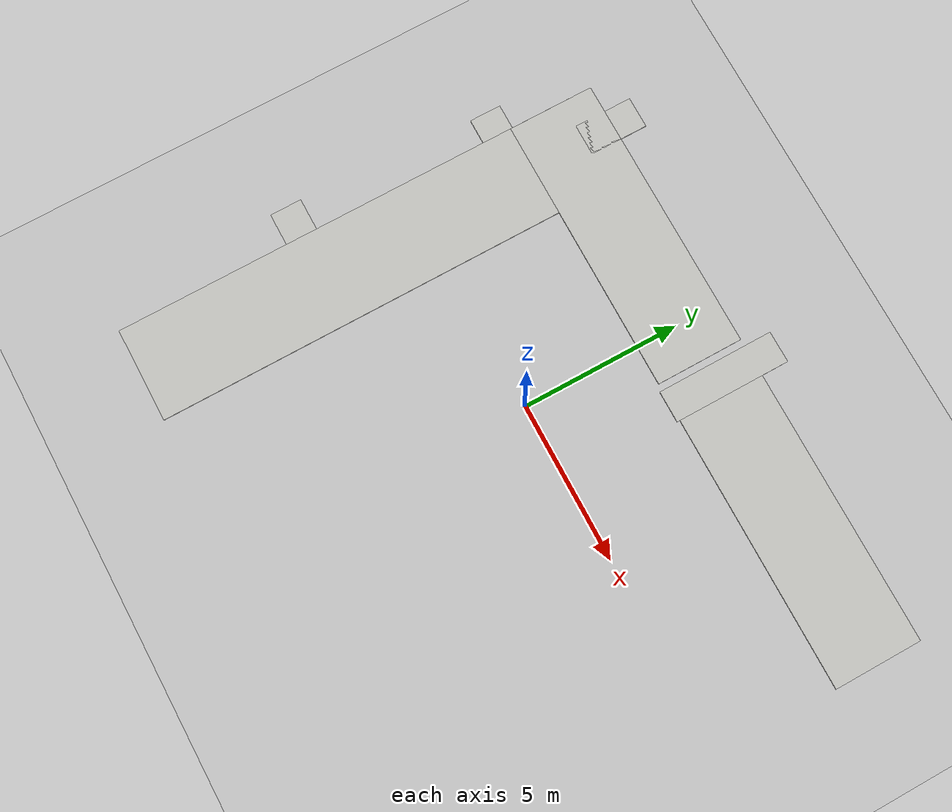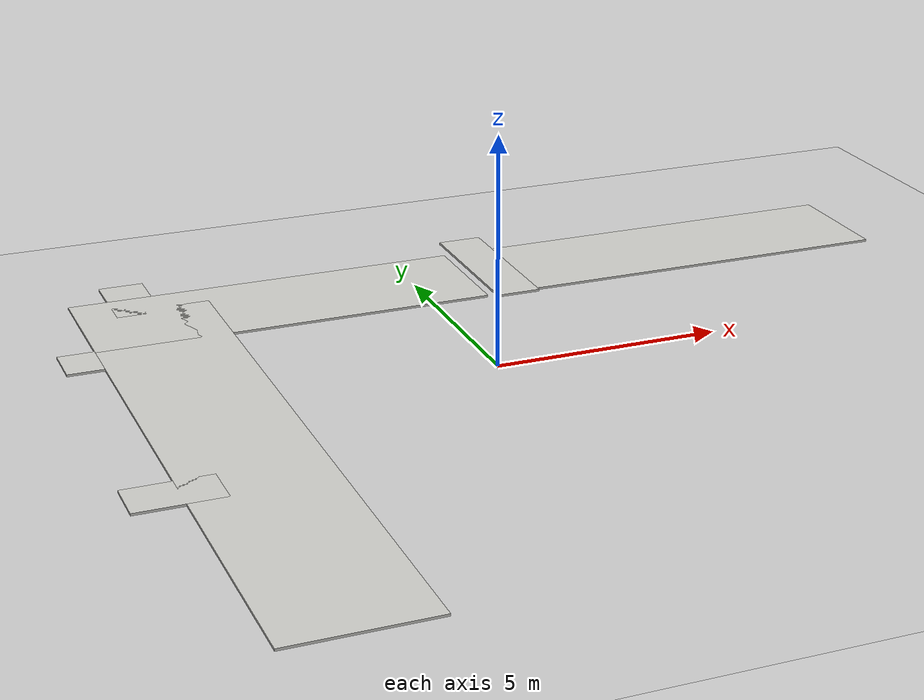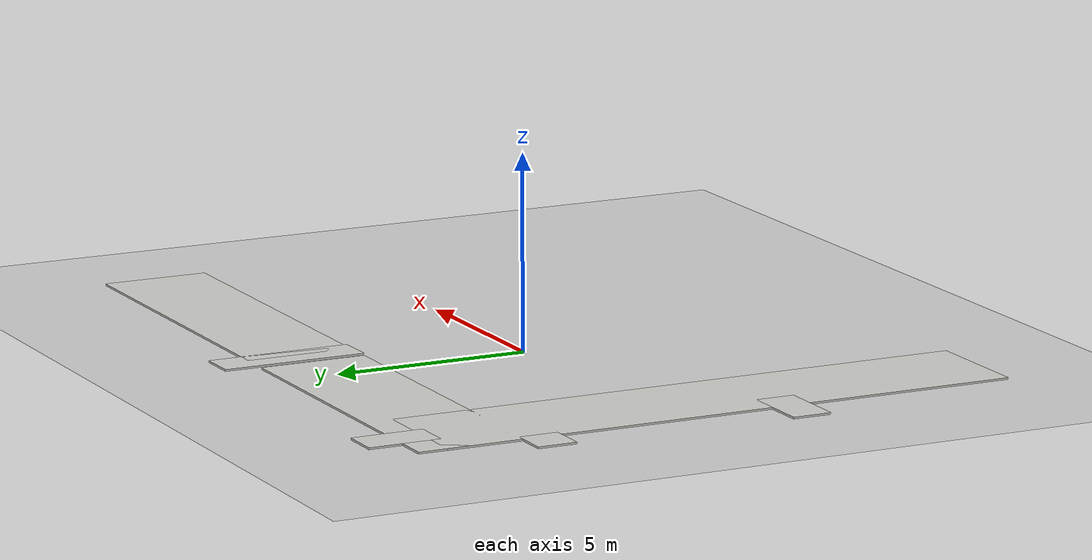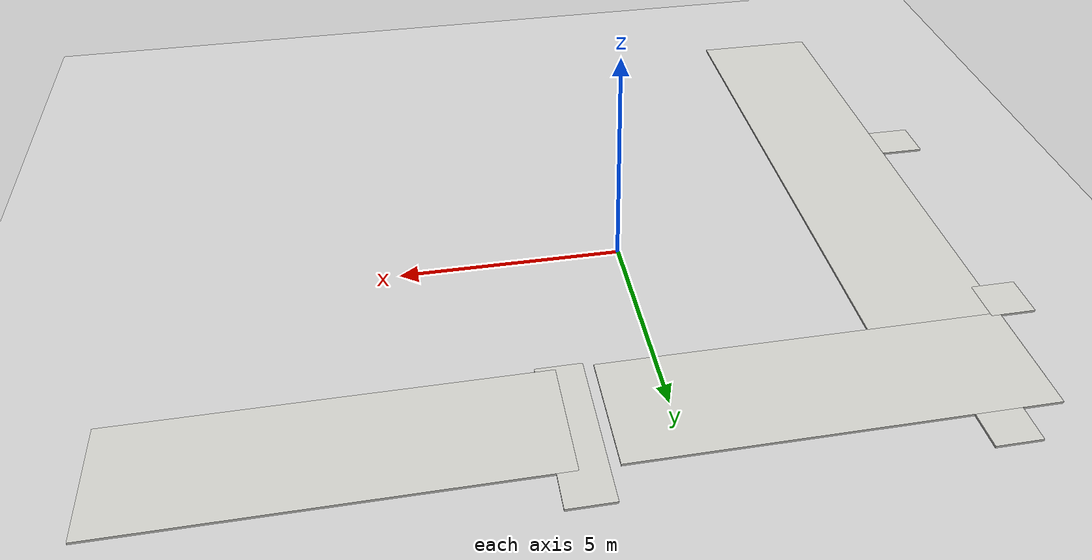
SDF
<sdf version="1.7">
 <world name="default">
  <model name="ground_plane">
   <static>1</static>
   <link name="link">
    <collision name="collision">
     <geometry><plane><normal>0 0 1</normal><size>100 100</size></plane></geometry>
     <surface><friction><ode><mu>100</mu><mu2>50</mu2></ode></friction></surface>
    </collision>
    <visual name="visual">
     <cast_shadows>0</cast_shadows>
     <geometry><plane><normal>0 0 1</normal><size>100 100</size></plane></geometry>
     <material>
      <script><uri>file://media/materials/scripts/gazebo.material</uri><name>Gazebo/Grey</name></script>
     </material>
    </visual>
   </link>
   <pose>-9.56672 -8.6074 0 0 -0 0</pose>
  </model>
  <model name="realPath">
   <pose>0.02771 0.80471 0 0 -0 0</pose>
   <link name="Wall_14">
    <collision name="Wall_14_Collision">
     <geometry><box><size>1.5 0.15 2.5</size></box></geometry>
     <pose>0 0 1.25 0 -0 0</pose>
    </collision>
    <pose>-7.9532 -4.57364 0 0 -0 0</pose>
   </link>
   <link name="Wall_15">
    <collision name="Wall_15_Collision">
     <geometry><box><size>0.516659 0.15 2.5</size></box></geometry>
     <pose>0 0 1.25 0 -0 0</pose>
    </collision>
    <pose>-7.2524 -4.75515 0 0 -0 -1.42962</pose>
   </link>
   <link name="Wall_18">
    <collision name="Wall_18_Collision">
     <geometry><box><size>1.5 0.15 2.5</size></box></geometry>
     <pose>0 0 1.25 0 -0 0</pose>
    </collision>
    <pose>-7.95747 -3.7233 0 0 -0 0</pose>
   </link>
   <link name="Wall_2">
    <collision name="Wall_2_Collision">
     <geometry><box><size>2.5 0.15 2.5</size></box></geometry>
     <pose>0 0 1.25 0 -0 0</pose>
    </collision>
    <pose>11.4734 3.98835 0 0 -0 -1.5708</pose>
   </link>
   <link name="Wall_21">
    <collision name="Wall_21_Collision">
     <geometry><box><size>6 0.15 2.5</size></box></geometry>
     <pose>0 0 1.25 0 -0 0</pose>
    </collision>
    <pose>-7.28033 -0.798471 0 0 -0 1.57007</pose>
   </link>
   <link name="Wall_22">
    <collision name="Wall_22_Collision">
     <geometry><box><size>1.27011 0.15 2.5</size></box></geometry>
     <pose>0 0 1.25 0 -0 0</pose>
    </collision>
    <pose>-7.83826 2.12636 0 0 -0 -3.14159</pose>
   </link>
   <link name="Wall_25">
    <collision name="Wall_25_Collision">
     <geometry><box><size>1.27011 0.15 2.5</size></box></geometry>
     <pose>0 0 1.25 0 -0 0</pose>
    </collision>
    <pose>-7.83826 2.97636 0 0 -0 0</pose>
   </link>
   <link name="Wall_26">
    <collision name="Wall_26_Collision">
     <geometry><box><size>2.5 0.15 2.5</size></box></geometry>
     <pose>0 0 1.25 0 -0 0</pose>
    </collision>
    <pose>-7.2782 4.15136 0 0 -0 1.5708</pose>
   </link>
   <link name="Wall_27">
    <collision name="Wall_27_Collision">
     <geometry><box><size>0.75 0.15 2.5</size></box></geometry>
     <pose>0 0 1.25 0 -0 0</pose>
    </collision>
    <pose>-6.9782 5.32636 0 0 -0 0</pose>
   </link>
   <link name="Wall_29">
    <collision name="Wall_29_Collision">
     <geometry><box><size>1.25 0.15 2.5</size></box></geometry>
     <pose>0 0 1.25 0 -0 0</pose>
    </collision>
    <pose>-6.6782 5.87636 0 0 -0 1.5708</pose>
   </link>
   <link name="Wall_3">
    <collision name="Wall_3_Collision">
     <geometry><box><size>16.25 0.15 2.5</size></box></geometry>
     <pose>0 0 1.25 0 -0 0</pose>
    </collision>
    <pose>3.42339 2.81335 0 0 -0 3.14159</pose>
   </link>
   <link name="Wall_31">
    <collision name="Wall_31_Collision">
     <geometry><box><size>1.25 0.15 2.5</size></box></geometry>
     <pose>0 0 1.25 0 -0 0</pose>
    </collision>
    <pose>-5.8282 5.87636 0 0 -0 -1.5708</pose>
   </link>
   <link name="Wall_32">
    <collision name="Wall_32_Collision">
     <geometry><box><size>7.5 0.15 2.5</size></box></geometry>
     <pose>0 0 1.25 0 -0 0</pose>
    </collision>
    <pose>-2.1532 5.32636 0 0 -0 0</pose>
   </link>
   <link name="Wall_36">
    <collision name="Wall_36_Collision">
     <geometry><box><size>9.25 0.15 2.5</size></box></geometry>
     <pose>0 0 1.25 0 -0 0</pose>
    </collision>
    <pose>6.9018 5.33636 0 0 -0 0</pose>
   </link>
   <link name="Wall_37">
    <collision name="Wall_37_Collision">
     <geometry><box><size>0.15 0.15 2.5</size></box></geometry>
     <pose>0 0 1.25 0 -0 0</pose>
    </collision>
    <pose>11.4518 5.32636 0 0 -0 0</pose>
   </link>
   <link name="Wall_39">
    <collision name="Wall_39_Collision">
     <geometry><box><size>0.314435 0.15 2.5</size></box></geometry>
     <pose>0 0 1.25 0 -0 0</pose>
    </collision>
    <pose>11.4626 5.24485 0 0 -0 -1.4391</pose>
   </link>
   <link name="Wall_4">
    <collision name="Wall_4_Collision">
     <geometry><box><size>12.25 0.15 2.5</size></box></geometry>
     <pose>0 0 1.25 0 -0 0</pose>
    </collision>
    <pose>-4.62661 -3.23665 0 0 -0 -1.5708</pose>
   </link>
   <link name="Wall_5">
    <collision name="Wall_5_Collision">
     <geometry><box><size>2.75 0.15 2.5</size></box></geometry>
     <pose>0 0 1.25 0 -0 0</pose>
    </collision>
    <pose>-5.92661 -9.28665 0 0 -0 3.14159</pose>
   </link>
   <link name="Wall_7">
    <collision name="Wall_7_Collision">
     <geometry><box><size>4.5 0.15 2.5</size></box></geometry>
     <pose>0 0 1.25 0 -0 0</pose>
    </collision>
    <pose>-7.22661 -7.11165 0 0 -0 1.5708</pose>
   </link>
   <link name="Wall_8">
    <collision name="Wall_8_Collision">
     <geometry><box><size>0.25 0.15 2.5</size></box></geometry>
     <pose>0 0 1.25 0 -0 0</pose>
    </collision>
    <pose>-7.22661 -4.88665 0 0 -0 1.5708</pose>
   </link>
   <link name="Wall_81">
    <collision name="Wall_81_Collision">
     <geometry><box><size>1.25 0.15 2.5</size></box></geometry>
     <pose>0 0 1.25 0 -0 0</pose>
    </collision>
    <pose>1.5218 5.87636 0 0 -0 1.5708</pose>
   </link>
   <link name="Wall_85">
    <collision name="Wall_85_Collision">
     <geometry><box><size>1.25 0.15 2.5</size></box></geometry>
     <pose>0 0 1.25 0 -0 0</pose>
    </collision>
    <pose>2.3518 5.88636 0 0 -0 1.5708</pose>
   </link>
   <static>1</static>
  </model>
  <model name="indo">
   <pose>0.81327 -0.60537 0 0 -0 0</pose>
   <link name="Wall_12">
    <collision name="Wall_12_Collision">
     <geometry><box><size>9 2.75 0.05</size></box></geometry>
     <pose>0 0 0.025 0 -0 0</pose>
    </collision>
    <visual name="Wall_12_Visual">
     <pose>0 0 0.025 0 -0 0</pose>
     <geometry><box><size>9 2.75 0.05</size></box></geometry>
     <material>
      <script><uri>file://media/materials/scripts/gazebo.material</uri><name>Gazebo/CeilingTiled</name></script>
      <ambient>1 1 1 1</ambient>
     </material>
     <meta><layer>0</layer></meta>
    </visual>
    <pose>5.75239 5.68288 0 0 -0 3.14159</pose>
   </link>
   <link name="Wall_18">
    <collision name="Wall_18_Collision">
     <geometry><box><size>8.9 2.75 0.05</size></box></geometry>
     <pose>0 0 0.025 0 -0 0</pose>
    </collision>
    <visual name="Wall_18_Visual">
     <pose>0 0 0.025 0 -0 0</pose>
     <geometry><box><size>8.9 2.75 0.05</size></box></geometry>
     <material>
      <script><uri>file://media/materials/scripts/gazebo.material</uri><name>Gazebo/CeilingTiled</name></script>
      <ambient>1 1 1 1</ambient>
     </material>
     <meta><layer>0</layer></meta>
    </visual>
    <pose>-3.99159 5.67955 0 0 -0 3.14159</pose>
   </link>
   <link name="Wall_22">
    <collision name="Wall_22_Collision">
     <geometry><box><size>15 3 0.05</size></box></geometry>
     <pose>0 0 0.025 0 -0 0</pose>
    </collision>
    <visual name="Wall_22_Visual">
     <pose>0 0 0.025 0 -0 0</pose>
     <geometry><box><size>15 3 0.05</size></box></geometry>
     <material>
      <script><uri>file://media/materials/scripts/gazebo.material</uri><name>Gazebo/CeilingTiled</name></script>
      <ambient>1 1 1 1</ambient>
     </material>
     <meta><layer>0</layer></meta>
    </visual>
    <pose>-6.94474 -1.17738 0 0 -0 -1.5708</pose>
   </link>
   <static>1</static>
  </model>
  <model name="indo2">
   <pose>-3.08902 1.74007 0 0 -0 0</pose>
   <link name="Wall_10">
    <collision name="Wall_10_Collision">
     <geometry><box><size>3.7 1 0.05</size></box></geometry>
     <pose>0 0 0.025 0 -0 0</pose>
    </collision>
    <visual name="Wall_10_Visual">
     <pose>0 0 0.025 0 -0 0</pose>
     <geometry><box><size>3.7 1 0.05</size></box></geometry>
     <material>
      <script><uri>file://media/materials/scripts/gazebo.material</uri><name>Gazebo/CeilingTiled</name></script>
      <ambient>1 1 1 1</ambient>
     </material>
     <meta><layer>0</layer></meta>
    </visual>
    <pose>5.07653 3.72055 0 0 -0 -1.5708</pose>
   </link>
   <link name="Wall_14">
    <collision name="Wall_14_Collision">
     <geometry><box><size>1.85 1 0.05</size></box></geometry>
     <pose>0 0 0.025 0 -0 0</pose>
    </collision>
    <visual name="Wall_14_Visual">
     <pose>0 0 0.025 0 -0 0</pose>
     <geometry><box><size>1.85 1 0.05</size></box></geometry>
     <material>
      <script><uri>file://media/materials/scripts/gazebo.material</uri><name>Gazebo/CeilingTiled</name></script>
      <ambient>1 1 1 1</ambient>
     </material>
     <meta><layer>0</layer></meta>
    </visual>
    <pose>-3.16858 4.64438 0 0 -0 -1.5708</pose>
   </link>
   <link name="Wall_17">
    <collision name="Wall_17_Collision">
     <geometry><box><size>1.01 1 0.05</size></box></geometry>
     <pose>0 0 0.025 0 -0 0</pose>
    </collision>
    <visual name="Wall_17_Visual">
     <pose>0 0 0.025 0 -0 0</pose>
     <geometry><box><size>1.01 1 0.05</size></box></geometry>
     <material>
      <script><uri>file://media/materials/scripts/gazebo.material</uri><name>Gazebo/CeilingTiled</name></script>
      <ambient>1 1 1 1</ambient>
     </material>
     <meta><layer>0</layer></meta>
    </visual>
    <pose>-4.83677 1.52639 0 0 -0 3.14159</pose>
   </link>
   <link name="Wall_20">
    <collision name="Wall_20_Collision">
     <geometry><box><size>1.85 1 0.05</size></box></geometry>
     <pose>0 0 0.025 0 -0 0</pose>
    </collision>
    <visual name="Wall_20_Visual">
     <pose>0 0 0.025 0 -0 0</pose>
     <geometry><box><size>1.85 1 0.05</size></box></geometry>
     <material>
      <script><uri>file://media/materials/scripts/gazebo.material</uri><name>Gazebo/CeilingTiled</name></script>
      <ambient>1 1 1 1</ambient>
     </material>
     <meta><layer>0</layer></meta>
    </visual>
    <pose>-4.65153 -5.07055 0 0 -0 0</pose>
   </link>
   <static>1</static>
  </model>
 </world>
</sdf>
